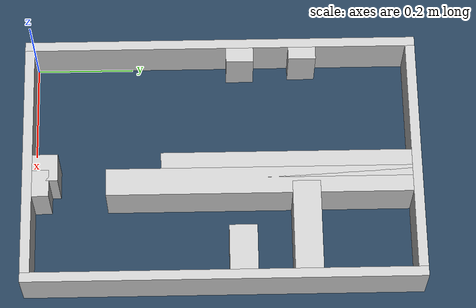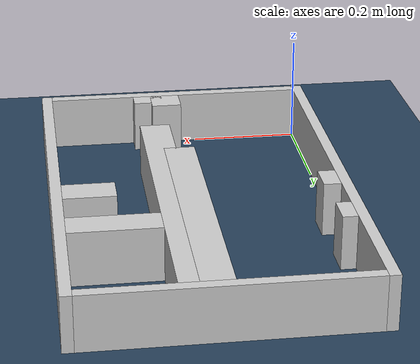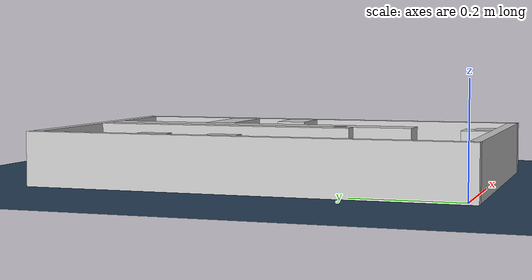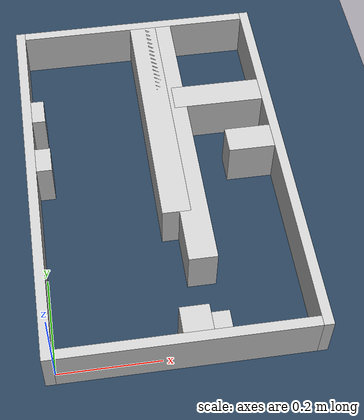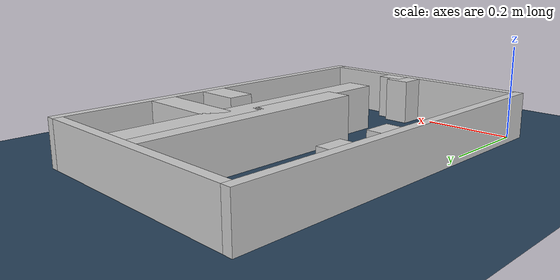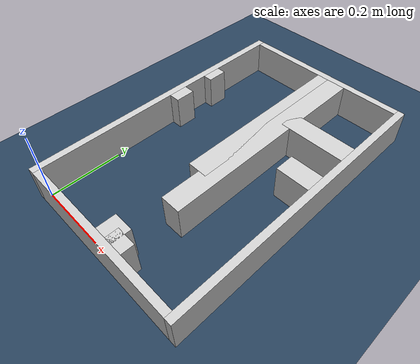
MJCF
<?xml version="1.0" ?>
<mujoco model="generated_real_template">
  <compiler angle="degree"/>
  <option timestep="0.002" integrator="implicitfast" iterations="100" cone="elliptic"/>
  <default>
    <geom density="1"/>
  </default>
  <asset>
    <texture builtin="gradient" height="3072" rgb1="0.3 0.5 0.7" rgb2="0 0 0" type="skybox" width="512"/>
    <texture builtin="checker" height="300" mark="edge" markrgb="0.8 0.8 0.8" name="groundplane" rgb1="0.2 0.3 0.4" rgb2="0.1 0.2 0.3" type="2d" width="300"/>
    <material name="groundplane" reflectance="0.2" texrepeat="5 5" texture="groundplane" texuniform="true"/>
  </asset>
  <worldbody>
    <light dir="0 0 -1" directional="true" pos="0 0 1.5"/>
    <geom name="floor" type="plane" condim="4" friction="0.5 0.005 0.001" material="groundplane" size="0 0 0.05"/>
    <body name="walls">
      <geom name="wall_boundary_left" type="box" condim="4" friction="1.0 0.005 0.0001" rgba="0.8 0.8 0.8 1" pos="-0.010000 0.387500 0.050000" euler="0 0 0.000000" size="0.010000 0.407500 0.050000"/>
      <geom name="wall_boundary_right" type="box" condim="4" friction="1.0 0.005 0.0001" rgba="0.8 0.8 0.8 1" pos="0.500000 0.387500 0.050000" euler="0 0 0.000000" size="0.010000 0.407500 0.050000"/>
      <geom name="wall_boundary_bottom" type="box" condim="4" friction="1.0 0.005 0.0001" rgba="0.8 0.8 0.8 1" pos="0.245000 -0.010000 0.050000" euler="0 0 0.000000" size="0.245000 0.010000 0.050000"/>
      <geom name="wall_boundary_top" type="box" condim="4" friction="1.0 0.005 0.0001" rgba="0.8 0.8 0.8 1" pos="0.245000 0.785000 0.050000" euler="0 0 0.000000" size="0.245000 0.010000 0.050000"/>
      <geom name="wall_inner_1_1" type="box" condim="4" friction="1.0 0.005 0.0001" rgba="0.8 0.8 0.8 1" pos="0.013574 0.558128 0.050000" euler="0 0 0.000000" size="0.013574 0.028500 0.050000"/>
      <geom name="wall_inner_1_2" type="box" condim="4" friction="1.0 0.005 0.0001" rgba="0.8 0.8 0.8 1" pos="0.395951 0.558128 0.050000" euler="0 0 0.000000" size="0.094049 0.028500 0.050000"/>
      <geom name="wall_inner_2_1" type="box" condim="4" friction="1.0 0.005 0.0001" rgba="0.8 0.8 0.8 1" pos="0.015916 0.427940 0.050000" euler="0 0 0.000000" size="0.015916 0.028500 0.050000"/>
      <geom name="wall_inner_2_2" type="box" condim="4" friction="1.0 0.005 0.0001" rgba="0.8 0.8 0.8 1" pos="0.442606 0.427940 0.050000" euler="0 0 0.000000" size="0.047394 0.028500 0.050000"/>
      <geom name="wall_inner_3_1" type="box" condim="4" friction="1.0 0.005 0.0001" rgba="0.8 0.8 0.8 1" pos="0.299093 0.017427 0.050000" euler="0 0 90.000000" size="0.017427 0.028500 0.050000"/>
      <geom name="wall_inner_3_2" type="box" condim="4" friction="1.0 0.005 0.0001" rgba="0.8 0.8 0.8 1" pos="0.299093 0.462774 0.050000" euler="0 0 90.000000" size="0.312226 0.028500 0.050000"/>
      <geom name="wall_inner_4_1" type="box" condim="4" friction="1.0 0.005 0.0001" rgba="0.8 0.8 0.8 1" pos="0.264871 0.026300 0.050000" euler="0 0 90.000000" size="0.026300 0.028500 0.050000"/>
      <geom name="wall_inner_4_2" type="box" condim="4" friction="1.0 0.005 0.0001" rgba="0.8 0.8 0.8 1" pos="0.264871 0.518864 0.050000" euler="0 0 90.000000" size="0.256136 0.028500 0.050000"/>
    </body>
  </worldbody>
</mujoco>
